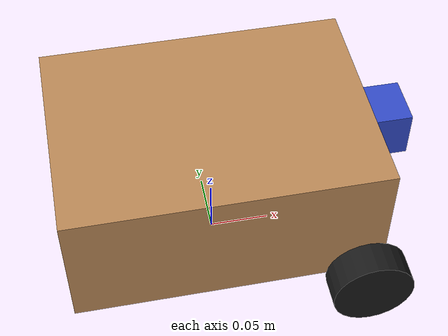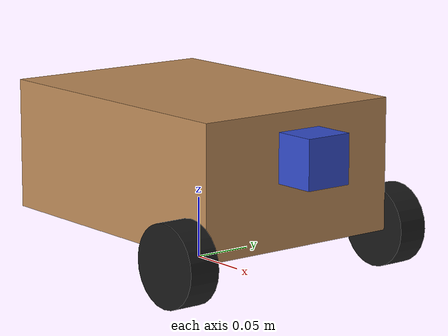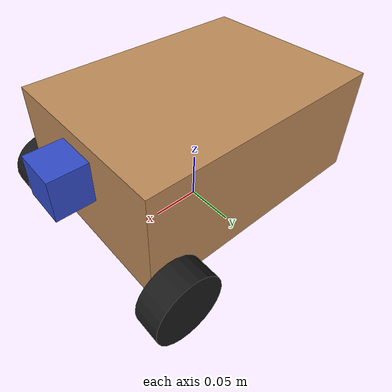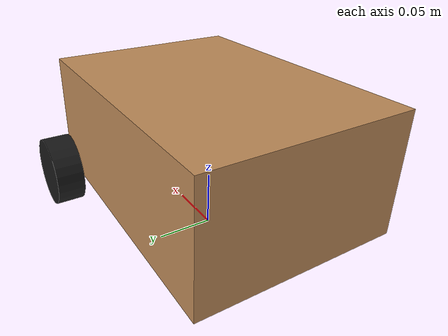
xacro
<?xml version="1.0"?>
<robot xmlns:xacro="http://www.ros.org/wiki/xacro" name="mobile_robot">

    <!-- Include Sub-files -->
    <xacro:include filename="inertia_macros.xacro" />
    <xacro:include filename="chassis.xacro" />
    <xacro:include filename="camera.xacro" />

</robot>

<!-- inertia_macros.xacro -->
<robot xmlns:xacro="http://www.ros.org/wiki/xacro">

    <xacro:macro name="inertial_box" params="mass x y z *origin">
        <inertial>
            <xacro:insert_block name="origin"/>
            <mass value="${mass}"/>
            <inertia ixx="${(1/12) * mass * (y*y + z*z)}" ixy="0.0" ixz="0.0"
                     iyy="${(1/12) * mass * (x*x + z*z)}" iyz="0.0"
                     izz="${(1/12) * mass * (x*x + y*y)}"/>
        </inertial>
    </xacro:macro>

    <xacro:macro name="inertial_cylinder" params="mass length radius *origin">
        <inertial>
            <xacro:insert_block name="origin"/>
            <mass value="${mass}"/>
            <inertia ixx="${(1/12) * mass * (3*radius*radius + length*length)}" ixy="0.0" ixz="0.0"
                     iyy="${(1/12) * mass * (3*radius*radius + length*length)}" iyz="0.0"
                     izz="${(1/2) * mass * (radius*radius)}"/>
        </inertial>
    </xacro:macro>

    <xacro:macro name="inertial_sphere" params="mass radius *origin">
        <inertial>
            <xacro:insert_block name="origin"/>
            <mass value="${mass}"/>
            <inertia ixx="${(2/5) * mass * (radius*radius)}" ixy="0.0" ixz="0.0"
                     iyy="${(2/5) * mass * (radius*radius)}" iyz="0.0"
                     izz="${(2/5) * mass * (radius*radius)}"/>
        </inertial>
    </xacro:macro>

</robot>

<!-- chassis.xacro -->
<robot xmlns:xacro="http://www.ros.org/wiki/xacro">

    <!-- MATERIALS & COLORS FOR RVIZ -->
    <material name="wood_mdf">
        <color rgba="0.75 0.55 0.35 1.0"/>
    </material>
    <material name="black">
        <color rgba="0.1 0.1 0.1 1.0"/>
    </material>
    <material name="white">
        <color rgba="0.9 0.9 0.9 1.0"/>
    </material>

    <!-- PROPERTY DEFINITIONS (Tweak these to match physical dimensions) -->
    <xacro:property name="chassis_length" value="0.250"/> <!-- 25 cm -->
    <xacro:property name="chassis_width"  value="0.180"/> <!-- 18 cm -->
    <xacro:property name="chassis_height" value="0.1075"/> <!-- 6 cm 0.060-->
    <xacro:property name="chassis_mass"   value="0.800"/>

    <xacro:property name="wheel_radius"  value="0.033"/> <!-- 66 mm diameter -->
    <xacro:property name="wheel_thickness" value="0.026"/> <!-- 26 mm width -->
    <xacro:property name="wheel_mass"      value="0.050"/>
    <xacro:property name="wheel_offset_y"  value="0.105"/> <!-- Track width center-to-wheel -->
    <xacro:property name="wheel_offset_x"  value="0.11"/> <!-- Axle position along length -->

    <xacro:property name="caster_radius"  value="0.015"/> <!-- 30 mm caster ball -->
    <xacro:property name="caster_mass"    value="0.030"/>
    <xacro:property name="caster_offset_x" value="-0.080"/> <!-- Front/rear caster position -->

    <!-- 1. BASE FOOTPRINT (Ground plane z=0) -->
    <link name="base_footprint"/>

    <joint name="base_footprint_joint" type="fixed">
        <parent link="base_footprint"/>
        <child link="base_link"/>
        <origin xyz="0 0 ${wheel_radius}" rpy="0 0 0"/>
    </joint>

    <!-- 2. BASE LINK (Main MDF Chassis) -->
    <link name="base_link">
        <visual>
            <origin xyz="0 0 ${chassis_height/2}" rpy="0 0 0"/>
            <geometry>
                <box size="${chassis_length} ${chassis_width} ${chassis_height}"/>
            </geometry>
            <material name="wood_mdf"/>
        </visual>
        <collision>
            <origin xyz="0 0 ${chassis_height/2}" rpy="0 0 0"/>
            <geometry>
                <box size="${chassis_length} ${chassis_width} ${chassis_height}"/>
            </geometry>
        </collision>
        <xacro:inertial_box mass="${chassis_mass}" x="${chassis_length}" y="${chassis_width}" z="${chassis_height}">
            <origin xyz="0 0 ${chassis_height/2}" rpy="0 0 0"/>
        </xacro:inertial_box>
    </link>

    <!-- 3. LEFT WHEEL -->
    <joint name="left_wheel_joint" type="continuous">
        <parent link="base_link"/>
        <child link="left_wheel"/>
        <origin xyz="${wheel_offset_x} ${wheel_offset_y} 0" rpy="-${pi/2} 0 0"/>
        <axis xyz="0 0 1"/>
    </joint>

    <link name="left_wheel">
        <visual>
            <geometry>
                <cylinder radius="${wheel_radius}" length="${wheel_thickness}"/>
            </geometry>
            <material name="black"/>
        </visual>
        <collision>
            <geometry>
                <cylinder radius="${wheel_radius}" length="${wheel_thickness}"/>
            </geometry>
        </collision>
        <xacro:inertial_cylinder mass="${wheel_mass}" length="${wheel_thickness}" radius="${wheel_radius}">
            <origin xyz="0 0 0" rpy="0 0 0"/>
        </xacro:inertial_cylinder>
    </link>

    <!-- 4. RIGHT WHEEL -->
    <joint name="right_wheel_joint" type="continuous">
        <parent link="base_link"/>
        <child link="right_wheel"/>
        <origin xyz="${wheel_offset_x} -${wheel_offset_y} 0" rpy="${pi/2} 0 0"/>
        <axis xyz="0 0 -1"/>
    </joint>

    <link name="right_wheel">
        <visual>
            <geometry>
                <cylinder radius="${wheel_radius}" length="${wheel_thickness}"/>
            </geometry>
            <material name="black"/>
        </visual>
        <collision>
            <geometry>
                <cylinder radius="${wheel_radius}" length="${wheel_thickness}"/>
            </geometry>
        </collision>
        <xacro:inertial_cylinder mass="${wheel_mass}" length="${wheel_thickness}" radius="${wheel_radius}">
            <origin xyz="0 0 0" rpy="0 0 0"/>
        </xacro:inertial_cylinder>
    </link>

    <!-- 5. CASTER WHEEL -->
    <joint name="caster_wheel_joint" type="fixed">
        <parent link="base_link"/>
        <child link="caster_wheel"/>
        <origin xyz="${caster_offset_x} 0 -${wheel_radius - caster_radius}" rpy="0 0 0"/>
    </joint>

    <link name="caster_wheel">
        <visual>
            <geometry>
                <sphere radius="${caster_radius}"/>
            </geometry>
            <material name="white"/>
        </visual>
        <collision>
            <geometry>
                <sphere radius="${caster_radius}"/>
            </geometry>
        </collision>
        <xacro:inertial_sphere mass="${caster_mass}" radius="${caster_radius}">
            <origin xyz="0 0 0" rpy="0 0 0"/>
        </xacro:inertial_sphere>
    </link>

</robot>

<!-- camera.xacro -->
<robot xmlns:xacro="http://www.ros.org/wiki/xacro">

    <material name="camera_blue">
        <color rgba="0.2 0.3 0.8 1.0"/>
    </material>

    <!-- LDS-02RR Physical Dimensions -->
    <xacro:property name="camera_width" value="0.04"/> <!-- ~76mm diameter -->
    <xacro:property name="camera_length" value="0.04"/> <!-- ~76mm diameter -->
    <xacro:property name="camera_height" value="0.07"/> <!-- ~40mm puck height -->
    <xacro:property name="camera_mass"   value="0.200"/>
    <xacro:property name="camera_elevation"   value="0.0725"/>

    <!-- Joint: Attach camera to the top deck of base_link -->
    <joint name="camera_optical_joint" type="fixed">
        <parent link="base_link"/>
        <child link="camera_optical_frame"/>
        <!-- Mounted 6cm forward on top deck -->
        <origin xyz="0.125 0 ${camera_elevation}" rpy="-1.570796327 0 -1.570796327"/>
    </joint>

    <!-- Link: Frame ID used by ROS 2 /scan message -->
    <link name="camera_optical_frame">
        <visual>
            <geometry>
                <box size="${camera_length} ${camera_width} ${camera_height}"/>
            </geometry>
            <material name="camera_blue"/>
        </visual>
        <collision>
            <geometry>
                <box size="${camera_length} ${camera_width} ${camera_height}"/>
            </geometry>
        </collision>
        <xacro:inertial_box mass="${camera_mass}" x="${camera_length}" y="${camera_width}" z="${camera_height}">
            <origin xyz="0 0 0" rpy="0 0 0"/>
        </xacro:inertial_box>
    </link>

</robot>
